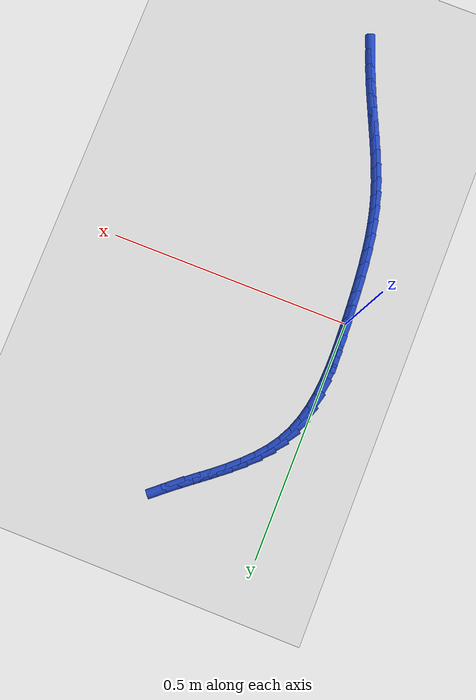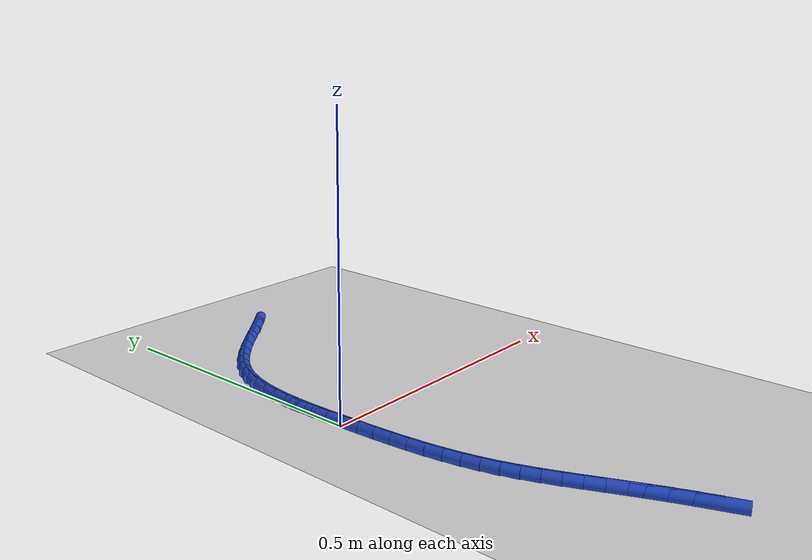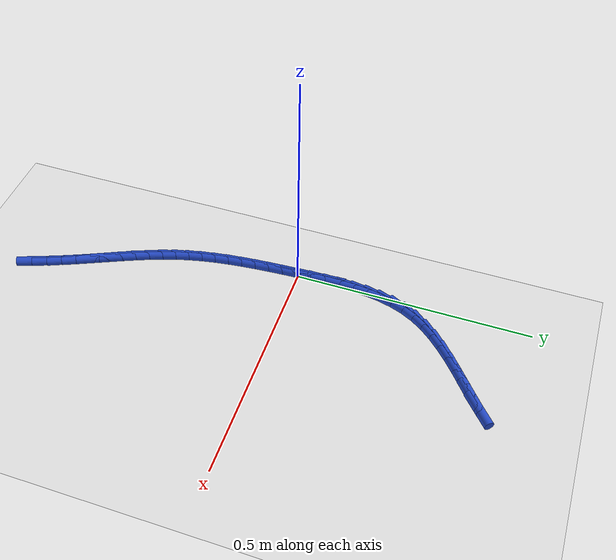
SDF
<sdf version="1.6">
 <world name="default">
  <model name="ground_plane">
   <static>1</static>
   <link name="link">
    <collision name="collision">
     <geometry><plane><normal>0 0 1</normal><size>100 100</size></plane></geometry>
     <surface><friction><ode><mu>100</mu><mu2>50</mu2></ode></friction></surface>
    </collision>
    <visual name="visual">
     <cast_shadows>0</cast_shadows>
     <geometry><plane><normal>0 0 1</normal><size>100 100</size></plane></geometry>
     <material>
      <script><uri>file://media/materials/scripts/gazebo.material</uri><name>Gazebo/WhiteGlow</name></script>
     </material>
    </visual>
   </link>
  </model>
  <model name="line">
   <link name="link_0">
    <pose>1.951563910473908e-18 3.469446951953614e-17 0.01 0 1.57 -1.5276882192725305</pose>
    <collision name="collision">
     <geometry><cylinder><radius>0.01</radius><length>0.08</length></cylinder></geometry>
    </collision>
    <visual name="visual">
     <material>
      <script><name>Gazebo/Blue</name><uri>file://media/materials/scripts/gazebo.material</uri></script>
     </material>
     <geometry><cylinder><radius>0.01</radius><length>0.08</length></cylinder></geometry>
    </visual>
   </link>
   <link name="link_1">
    <pose>-0.0013461957831000743 0.031209020171577916 0.01 0 1.57 -1.5441286582476965</pose>
    <collision name="collision">
     <geometry><cylinder><radius>0.01</radius><length>0.08</length></cylinder></geometry>
    </collision>
    <visual name="visual">
     <material>
      <script><name>Gazebo/Blue</name><uri>file://media/materials/scripts/gazebo.material</uri></script>
     </material>
     <geometry><cylinder><radius>0.01</radius><length>0.08</length></cylinder></geometry>
    </visual>
   </link>
   <link name="link_2">
    <pose>-0.002180284611352953 0.06247876137902921 0.01 0 1.57 1.5692639998427684</pose>
    <collision name="collision">
     <geometry><cylinder><radius>0.01</radius><length>0.08</length></cylinder></geometry>
    </collision>
    <visual name="visual">
     <material>
      <script><name>Gazebo/Blue</name><uri>file://media/materials/scripts/gazebo.material</uri></script>
     </material>
     <geometry><cylinder><radius>0.01</radius><length>0.08</length></cylinder></geometry>
    </visual>
   </link>
   <link name="link_3">
    <pose>-0.0021326142913077953 0.09358849463051473 0.01 0 1.57 1.5285460506647996</pose>
    <collision name="collision">
     <geometry><cylinder><radius>0.01</radius><length>0.08</length></cylinder></geometry>
    </collision>
    <visual name="visual">
     <material>
      <script><name>Gazebo/Blue</name><uri>file://media/materials/scripts/gazebo.material</uri></script>
     </material>
     <geometry><cylinder><radius>0.01</radius><length>0.08</length></cylinder></geometry>
    </visual>
   </link>
   <link name="link_4">
    <pose>-0.000833532629513768 0.12431749093419543 0.01 0 1.57 1.4741720181184212</pose>
    <collision name="collision">
     <geometry><cylinder><radius>0.01</radius><length>0.08</length></cylinder></geometry>
    </collision>
    <visual name="visual">
     <material>
      <script><name>Gazebo/Blue</name><uri>file://media/materials/scripts/gazebo.material</uri></script>
     </material>
     <geometry><cylinder><radius>0.01</radius><length>0.08</length></cylinder></geometry>
    </visual>
   </link>
   <link name="link_5">
    <pose>0.0020866125674799613 0.1544450212982322 0.01 0 1.57 1.4047633540465887</pose>
    <collision name="collision">
     <geometry><cylinder><radius>0.01</radius><length>0.08</length></cylinder></geometry>
    </collision>
    <visual name="visual">
     <material>
      <script><name>Gazebo/Blue</name><uri>file://media/materials/scripts/gazebo.material</uri></script>
     </material>
     <geometry><cylinder><radius>0.01</radius><length>0.08</length></cylinder></geometry>
    </visual>
   </link>
   <link name="link_6">
    <pose>0.00699747349312424 0.18375035673078594 0.01 0 1.57 1.3189818500896837</pose>
    <collision name="collision">
     <geometry><cylinder><radius>0.01</radius><length>0.08</length></cylinder></geometry>
    </collision>
    <visual name="visual">
     <material>
      <script><name>Gazebo/Blue</name><uri>file://media/materials/scripts/gazebo.material</uri></script>
     </material>
     <geometry><cylinder><radius>0.01</radius><length>0.08</length></cylinder></geometry>
    </visual>
   </link>
   <link name="link_7">
    <pose>0.014268702340869893 0.21201276824001752 0.01 0 1.57 1.2160350206963748</pose>
    <collision name="collision">
     <geometry><cylinder><radius>0.01</radius><length>0.08</length></cylinder></geometry>
    </collision>
    <visual name="visual">
     <material>
      <script><name>Gazebo/Blue</name><uri>file://media/materials/scripts/gazebo.material</uri></script>
     </material>
     <geometry><cylinder><radius>0.01</radius><length>0.08</length></cylinder></geometry>
    </visual>
   </link>
   <link name="link_8">
    <pose>0.024269951304167765 0.23901152683408775 0.01 0 1.57 1.0964997287381881</pose>
    <collision name="collision">
     <geometry><cylinder><radius>0.01</radius><length>0.08</length></cylinder></geometry>
    </collision>
    <visual name="visual">
     <material>
      <script><name>Gazebo/Blue</name><uri>file://media/materials/scripts/gazebo.material</uri></script>
     </material>
     <geometry><cylinder><radius>0.01</radius><length>0.08</length></cylinder></geometry>
    </visual>
   </link>
   <link name="link_9">
    <pose>0.037369085124948555 0.2645268513051817 0.01 0 1.57 0.9734054817675105</pose>
    <collision name="collision">
     <geometry><cylinder><radius>0.01</radius><length>0.08</length></cylinder></geometry>
    </collision>
    <visual name="visual">
     <material>
      <script><name>Gazebo/Blue</name><uri>file://media/materials/scripts/gazebo.material</uri></script>
     </material>
     <geometry><cylinder><radius>0.01</radius><length>0.08</length></cylinder></geometry>
    </visual>
   </link>
   <link name="link_10">
    <pose>0.053665591186455454 0.288481265716497 0.01 0 1.57 0.8708366883629408</pose>
    <collision name="collision">
     <geometry><cylinder><radius>0.01</radius><length>0.08</length></cylinder></geometry>
    </collision>
    <visual name="visual">
     <material>
      <script><name>Gazebo/Blue</name><uri>file://media/materials/scripts/gazebo.material</uri></script>
     </material>
     <geometry><cylinder><radius>0.01</radius><length>0.08</length></cylinder></geometry>
    </visual>
   </link>
   <link name="link_11">
    <pose>0.07270705285808933 0.3110899374847805 0.01 0 1.57 0.7911955926520953</pose>
    <collision name="collision">
     <geometry><cylinder><radius>0.01</radius><length>0.08</length></cylinder></geometry>
    </collision>
    <visual name="visual">
     <material>
      <script><name>Gazebo/Blue</name><uri>file://media/materials/scripts/gazebo.material</uri></script>
     </material>
     <geometry><cylinder><radius>0.01</radius><length>0.08</length></cylinder></geometry>
    </visual>
   </link>
   <link name="link_12">
    <pose>0.09397314140119684 0.33260404396065973 0.01 0 1.57 0.7327518537921345</pose>
    <collision name="collision">
     <geometry><cylinder><radius>0.01</radius><length>0.08</length></cylinder></geometry>
    </collision>
    <visual name="visual">
     <material>
      <script><name>Gazebo/Blue</name><uri>file://media/materials/scripts/gazebo.material</uri></script>
     </material>
     <geometry><cylinder><radius>0.01</radius><length>0.08</length></cylinder></geometry>
    </visual>
   </link>
   <link name="link_13">
    <pose>0.11694352807712456 0.3532747624947634 0.01 0 1.57 0.693512390965186</pose>
    <collision name="collision">
     <geometry><cylinder><radius>0.01</radius><length>0.08</length></cylinder></geometry>
    </collision>
    <visual name="visual">
     <material>
      <script><name>Gazebo/Blue</name><uri>file://media/materials/scripts/gazebo.material</uri></script>
     </material>
     <geometry><cylinder><radius>0.01</radius><length>0.08</length></cylinder></geometry>
    </visual>
   </link>
   <link name="link_14">
    <pose>0.14109788414721922 0.3733532704377196 0.01 0 1.57 0.6718616469457965</pose>
    <collision name="collision">
     <geometry><cylinder><radius>0.01</radius><length>0.08</length></cylinder></geometry>
    </collision>
    <visual name="visual">
     <material>
      <script><name>Gazebo/Blue</name><uri>file://media/materials/scripts/gazebo.material</uri></script>
     </material>
     <geometry><cylinder><radius>0.01</radius><length>0.08</length></cylinder></geometry>
    </visual>
   </link>
   <link name="link_15">
    <pose>0.16591588087282738 0.39309074514015646 0.01 0 1.57 0.6668396117418598</pose>
    <collision name="collision">
     <geometry><cylinder><radius>0.01</radius><length>0.08</length></cylinder></geometry>
    </collision>
    <visual name="visual">
     <material>
      <script><name>Gazebo/Blue</name><uri>file://media/materials/scripts/gazebo.material</uri></script>
     </material>
     <geometry><cylinder><radius>0.01</radius><length>0.08</length></cylinder></geometry>
    </visual>
   </link>
   <link name="link_16">
    <pose>0.1908771895152958 0.41273836395270225 0.01 0 1.57 0.6782408478617574</pose>
    <collision name="collision">
     <geometry><cylinder><radius>0.01</radius><length>0.08</length></cylinder></geometry>
    </collision>
    <visual name="visual">
     <material>
      <script><name>Gazebo/Blue</name><uri>file://media/materials/scripts/gazebo.material</uri></script>
     </material>
     <geometry><cylinder><radius>0.01</radius><length>0.08</length></cylinder></geometry>
    </visual>
   </link>
   <link name="link_17">
    <pose>0.215461481335971 0.43254730422598514 0.01 0 1.57 0.7066355753539529</pose>
    <collision name="collision">
     <geometry><cylinder><radius>0.01</radius><length>0.08</length></cylinder></geometry>
    </collision>
    <visual name="visual">
     <material>
      <script><name>Gazebo/Blue</name><uri>file://media/materials/scripts/gazebo.material</uri></script>
     </material>
     <geometry><cylinder><radius>0.01</radius><length>0.08</length></cylinder></geometry>
    </visual>
   </link>
   <link name="link_221">
    <pose>0.15115418823993793 -0.544289038777124 0.01 0 1.57 -1.2053085623753323</pose>
    <collision name="collision">
     <geometry><cylinder><radius>0.01</radius><length>0.08</length></cylinder></geometry>
    </collision>
    <visual name="visual">
     <material>
      <script><name>Gazebo/Blue</name><uri>file://media/materials/scripts/gazebo.material</uri></script>
     </material>
     <geometry><cylinder><radius>0.01</radius><length>0.08</length></cylinder></geometry>
    </visual>
   </link>
   <link name="link_222">
    <pose>0.13945819863163617 -0.5137257627080161 0.01 0 1.57 -1.1843073783017304</pose>
    <collision name="collision">
     <geometry><cylinder><radius>0.01</radius><length>0.08</length></cylinder></geometry>
    </collision>
    <visual name="visual">
     <material>
      <script><name>Gazebo/Blue</name><uri>file://media/materials/scripts/gazebo.material</uri></script>
     </material>
     <geometry><cylinder><radius>0.01</radius><length>0.08</length></cylinder></geometry>
    </visual>
   </link>
   <link name="link_223">
    <pose>0.1273847991190779 -0.4840582205285438 0.01 0 1.57 -1.1633570179621286</pose>
    <collision name="collision">
     <geometry><cylinder><radius>0.01</radius><length>0.08</length></cylinder></geometry>
    </collision>
    <visual name="visual">
     <material>
      <script><name>Gazebo/Blue</name><uri>file://media/materials/scripts/gazebo.material</uri></script>
     </material>
     <geometry><cylinder><radius>0.01</radius><length>0.08</length></cylinder></geometry>
    </visual>
   </link>
   <link name="link_224">
    <pose>0.11497681698238349 -0.4553087653277624 0.01 0 1.57 -1.149698336474364</pose>
    <collision name="collision">
     <geometry><cylinder><radius>0.01</radius><length>0.08</length></cylinder></geometry>
    </collision>
    <visual name="visual">
     <material>
      <script><name>Gazebo/Blue</name><uri>file://media/materials/scripts/gazebo.material</uri></script>
     </material>
     <geometry><cylinder><radius>0.01</radius><length>0.08</length></cylinder></geometry>
    </visual>
   </link>
   <link name="link_225">
    <pose>0.10243536013882282 -0.42730757623455473 0.01 0 1.57 -1.1441620371368317</pose>
    <collision name="collision">
     <geometry><cylinder><radius>0.01</radius><length>0.08</length></cylinder></geometry>
    </collision>
    <visual name="visual">
     <material>
      <script><name>Gazebo/Blue</name><uri>file://media/materials/scripts/gazebo.material</uri></script>
     </material>
     <geometry><cylinder><radius>0.01</radius><length>0.08</length></cylinder></geometry>
    </visual>
   </link>
   <link name="link_226">
    <pose>0.0899671523533981 -0.39987801398410916 0.01 0 1.57 -1.1472450803121301</pose>
    <collision name="collision">
     <geometry><cylinder><radius>0.01</radius><length>0.08</length></cylinder></geometry>
    </collision>
    <visual name="visual">
     <material>
      <script><name>Gazebo/Blue</name><uri>file://media/materials/scripts/gazebo.material</uri></script>
     </material>
     <geometry><cylinder><radius>0.01</radius><length>0.08</length></cylinder></geometry>
    </visual>
   </link>
   <link name="link_227">
    <pose>0.07777891739111162 -0.3728434393116147 0.01 0 1.57 -1.1593428298446122</pose>
    <collision name="collision">
     <geometry><cylinder><radius>0.01</radius><length>0.08</length></cylinder></geometry>
    </collision>
    <visual name="visual">
     <material>
      <script><name>Gazebo/Blue</name><uri>file://media/materials/scripts/gazebo.material</uri></script>
     </material>
     <geometry><cylinder><radius>0.01</radius><length>0.08</length></cylinder></geometry>
    </visual>
   </link>
   <link name="link_228">
    <pose>0.06607737901696548 -0.3460272129522594 0.01 0 1.57 -1.1807221696178285</pose>
    <collision name="collision">
     <geometry><cylinder><radius>0.01</radius><length>0.08</length></cylinder></geometry>
    </collision>
    <visual name="visual">
     <material>
      <script><name>Gazebo/Blue</name><uri>file://media/materials/scripts/gazebo.material</uri></script>
     </material>
     <geometry><cylinder><radius>0.01</radius><length>0.08</length></cylinder></geometry>
    </visual>
   </link>
   <link name="link_229">
    <pose>0.05506926099596201 -0.3192526956412324 0.01 0 1.57 -1.2114741544832297</pose>
    <collision name="collision">
     <geometry><cylinder><radius>0.01</radius><length>0.08</length></cylinder></geometry>
    </collision>
    <visual name="visual">
     <material>
      <script><name>Gazebo/Blue</name><uri>file://media/materials/scripts/gazebo.material</uri></script>
     </material>
     <geometry><cylinder><radius>0.01</radius><length>0.08</length></cylinder></geometry>
    </visual>
   </link>
   <link name="link_230">
    <pose>0.04496128709310312 -0.2923432481137213 0.01 0 1.57 -1.2514469256034373</pose>
    <collision name="collision">
     <geometry><cylinder><radius>0.01</radius><length>0.08</length></cylinder></geometry>
    </collision>
    <visual name="visual">
     <material>
      <script><name>Gazebo/Blue</name><uri>file://media/materials/scripts/gazebo.material</uri></script>
     </material>
     <geometry><cylinder><radius>0.01</radius><length>0.08</length></cylinder></geometry>
    </visual>
   </link>
   <link name="link_231">
    <pose>0.03596018107339157 -0.26512223110491623 0.01 0 1.57 -1.2991380977804827</pose>
    <collision name="collision">
     <geometry><cylinder><radius>0.01</radius><length>0.08</length></cylinder></geometry>
    </collision>
    <visual name="visual">
     <material>
      <script><name>Gazebo/Blue</name><uri>file://media/materials/scripts/gazebo.material</uri></script>
     </material>
     <geometry><cylinder><radius>0.01</radius><length>0.08</length></cylinder></geometry>
    </visual>
   </link>
   <link name="link_232">
    <pose>0.028246290660283 -0.23742863540814846 0.01 0 1.57 -1.3455821761996245</pose>
    <collision name="collision">
     <geometry><cylinder><radius>0.01</radius><length>0.08</length></cylinder></geometry>
    </collision>
    <visual name="visual">
     <material>
      <script><name>Gazebo/Blue</name><uri>file://media/materials/scripts/gazebo.material</uri></script>
     </material>
     <geometry><cylinder><radius>0.01</radius><length>0.08</length></cylinder></geometry>
    </visual>
   </link>
   <link name="link_233">
    <pose>0.021785612357461383 -0.20922847322829177 0.01 0 1.57 -1.3865130051167833</pose>
    <collision name="collision">
     <geometry><cylinder><radius>0.01</radius><length>0.08</length></cylinder></geometry>
    </collision>
    <visual name="visual">
     <material>
      <script><name>Gazebo/Blue</name><uri>file://media/materials/scripts/gazebo.material</uri></script>
     </material>
     <geometry><cylinder><radius>0.01</radius><length>0.08</length></cylinder></geometry>
    </visual>
   </link>
   <link name="link_234">
    <pose>0.01643990893819572 -0.1805495241610554 0.01 0 1.57 -1.4218987164162489</pose>
    <collision name="collision">
     <geometry><cylinder><radius>0.01</radius><length>0.08</length></cylinder></geometry>
    </collision>
    <visual name="visual">
     <material>
      <script><name>Gazebo/Blue</name><uri>file://media/materials/scripts/gazebo.material</uri></script>
     </material>
     <geometry><cylinder><radius>0.01</radius><length>0.08</length></cylinder></geometry>
    </visual>
   </link>
   <link name="link_235">
    <pose>0.012070248956463213 -0.15141997918639177 0.01 0 1.57 -1.451823968129907</pose>
    <collision name="collision">
     <geometry><cylinder><radius>0.01</radius><length>0.08</length></cylinder></geometry>
    </collision>
    <visual name="visual">
     <material>
      <script><name>Gazebo/Blue</name><uri>file://media/materials/scripts/gazebo.material</uri></script>
     </material>
     <geometry><cylinder><radius>0.01</radius><length>0.08</length></cylinder></geometry>
    </visual>
   </link>
   <link name="link_236">
    <pose>0.008537700966241056 -0.12186802928425332 0.01 0 1.57 -1.4764286851025057</pose>
    <collision name="collision">
     <geometry><cylinder><radius>0.01</radius><length>0.08</length></cylinder></geometry>
    </collision>
    <visual name="visual">
     <material>
      <script><name>Gazebo/Blue</name><uri>file://media/materials/scripts/gazebo.material</uri></script>
     </material>
     <geometry><cylinder><radius>0.01</radius><length>0.08</length></cylinder></geometry>
    </visual>
   </link>
   <link name="link_237">
    <pose>0.005703333521506459 -0.09192186543459252 0.01 0 1.57 -1.4958805677892757</pose>
    <collision name="collision">
     <geometry><cylinder><radius>0.01</radius><length>0.08</length></cylinder></geometry>
    </collision>
    <visual name="visual">
     <material>
      <script><name>Gazebo/Blue</name><uri>file://media/materials/scripts/gazebo.material</uri></script>
     </material>
     <geometry><cylinder><radius>0.01</radius><length>0.08</length></cylinder></geometry>
    </visual>
   </link>
   <link name="link_238">
    <pose>0.0034282151762365706 -0.061609678617361066 0.01 0 1.57 -1.5103545536331235</pose>
    <collision name="collision">
     <geometry><cylinder><radius>0.01</radius><length>0.08</length></cylinder></geometry>
    </collision>
    <visual name="visual">
     <material>
      <script><name>Gazebo/Blue</name><uri>file://media/materials/scripts/gazebo.material</uri></script>
     </material>
     <geometry><cylinder><radius>0.01</radius><length>0.08</length></cylinder></geometry>
    </visual>
   </link>
   <link name="link_239">
    <pose>0.001573414484408704 -0.030959659812512967 0.01 0 1.57 -1.520018573599399</pose>
    <collision name="collision">
     <geometry><cylinder><radius>0.01</radius><length>0.08</length></cylinder></geometry>
    </collision>
    <visual name="visual">
     <material>
      <script><name>Gazebo/Blue</name><uri>file://media/materials/scripts/gazebo.material</uri></script>
     </material>
     <geometry><cylinder><radius>0.01</radius><length>0.08</length></cylinder></geometry>
    </visual>
   </link>
   <link name="link_240">
    <pose>-1.0842021724855044e-18 7.632783294297951e-17 0.01 0 1.57 -1.525024576734781</pose>
    <collision name="collision">
     <geometry><cylinder><radius>0.01</radius><length>0.08</length></cylinder></geometry>
    </collision>
    <visual name="visual">
     <material>
      <script><name>Gazebo/Blue</name><uri>file://media/materials/scripts/gazebo.material</uri></script>
     </material>
     <geometry><cylinder><radius>0.01</radius><length>0.08</length></cylinder></geometry>
    </visual>
   </link>
   <link name="link_241">
    <pose>-0.0014309597230123445 0.03124110984022562 0.01 0 1.57 -1.5255037797009323</pose>
    <collision name="collision">
     <geometry><cylinder><radius>0.01</radius><length>0.08</length></cylinder></geometry>
    </collision>
    <visual name="visual">
     <material>
      <script><name>Gazebo/Blue</name><uri>file://media/materials/scripts/gazebo.material</uri></script>
     </material>
     <geometry><cylinder><radius>0.01</radius><length>0.08</length></cylinder></geometry>
    </visual>
   </link>
   <link name="link_242">
    <pose>-0.0028583961306511245 0.0627354787282112 0.01 0 1.57 -1.5252651428577657</pose>
    <collision name="collision">
     <geometry><cylinder><radius>0.01</radius><length>0.08</length></cylinder></geometry>
    </collision>
    <visual name="visual">
     <material>
      <script><name>Gazebo/Blue</name><uri>file://media/materials/scripts/gazebo.material</uri></script>
     </material>
     <geometry><cylinder><radius>0.01</radius><length>0.08</length></cylinder></geometry>
    </visual>
   </link>
  </model>
 </world>
</sdf>
